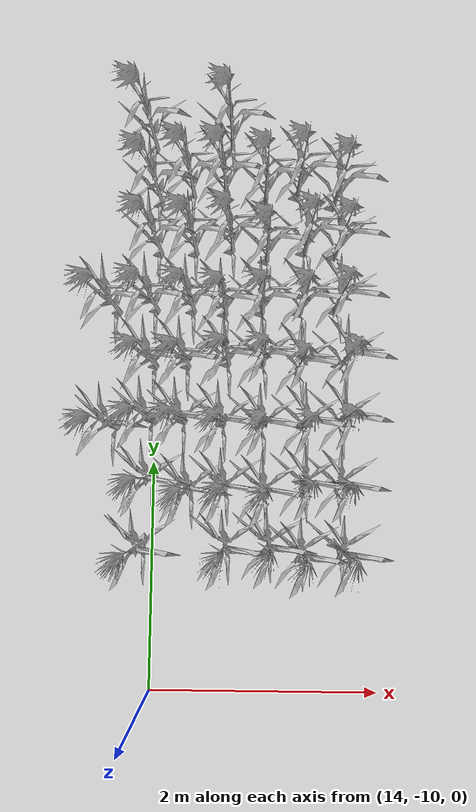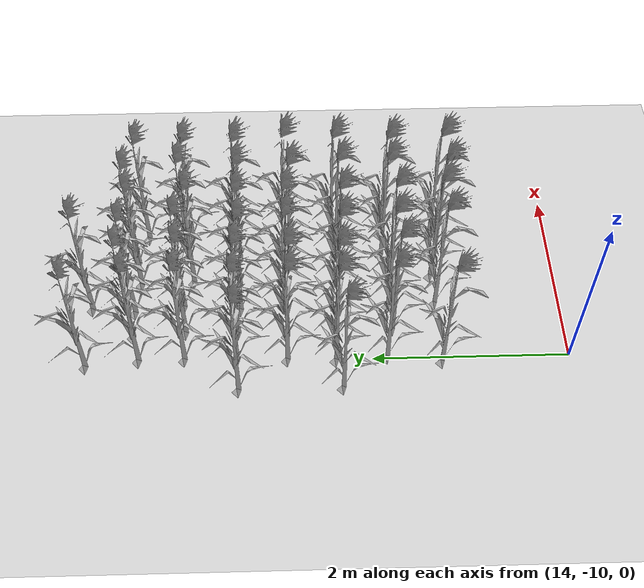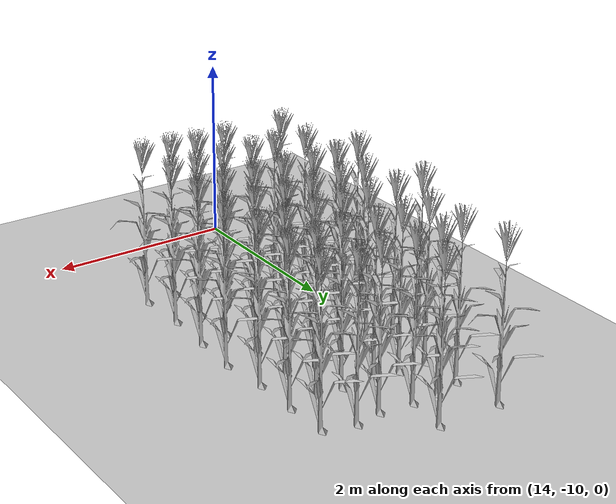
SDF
<sdf version="1.7">
 <world name="farmland_world">
  <model name="ground_plane">
   <static>1</static>
   <link name="link">
    <collision name="collision">
     <geometry><plane><normal>0 0 1</normal><size>40.0 40.0</size></plane></geometry>
     <surface><friction><ode><mu>100</mu><mu2>50</mu2></ode></friction></surface>
    </collision>
    <visual name="visual">
     <cast_shadows>0</cast_shadows>
     <geometry><plane><normal>0 0 1</normal><size>40.0 40.0</size></plane></geometry>
     <material>
      <script><uri>file://media/materials/scripts/gazebo.material</uri><name>Gazebo/Grey</name></script>
     </material>
    </visual>
   </link>
  </model>
  <model name="tree_3_1428">
   <static>1</static>
   <link name="link">
    <collision name="collision">
     <geometry><mesh><uri>model://Corn_low_poly/corn.obj</uri><scale>1 1 1</scale></mesh></geometry>
     <surface><friction><ode><mu>100</mu><mu2>50</mu2></ode></friction></surface>
    </collision>
    <visual name="visual">
     <geometry><mesh><uri>model://Corn_low_poly/corn.obj</uri><scale>1 1 1</scale></mesh></geometry>
    </visual>
   </link>
   <pose>13.676796730880094 -6.616987077211075 0 0 0 0</pose>
  </model>
  <model name="tree_3_1430">
   <static>1</static>
   <link name="link">
    <collision name="collision">
     <geometry><mesh><uri>model://Corn_low_poly/corn.obj</uri><scale>1 1 1</scale></mesh></geometry>
     <surface><friction><ode><mu>100</mu><mu2>50</mu2></ode></friction></surface>
    </collision>
    <visual name="visual">
     <geometry><mesh><uri>model://Corn_low_poly/corn.obj</uri><scale>1 1 1</scale></mesh></geometry>
    </visual>
   </link>
   <pose>13.68183654020661 -7.6623851158280045 0 0 0 0</pose>
  </model>
  <model name="tree_3_1451">
   <static>1</static>
   <link name="link">
    <collision name="collision">
     <geometry><mesh><uri>model://Corn_low_poly/corn.obj</uri><scale>1 1 1</scale></mesh></geometry>
     <surface><friction><ode><mu>100</mu><mu2>50</mu2></ode></friction></surface>
    </collision>
    <visual name="visual">
     <geometry><mesh><uri>model://Corn_low_poly/corn.obj</uri><scale>1 1 1</scale></mesh></geometry>
    </visual>
   </link>
   <pose>13.983714766761885 -5.066451543589041 0 0 0 0</pose>
  </model>
  <model name="tree_3_1452">
   <static>1</static>
   <link name="link">
    <collision name="collision">
     <geometry><mesh><uri>model://Corn_low_poly/corn.obj</uri><scale>1 1 1</scale></mesh></geometry>
     <surface><friction><ode><mu>100</mu><mu2>50</mu2></ode></friction></surface>
    </collision>
    <visual name="visual">
     <geometry><mesh><uri>model://Corn_low_poly/corn.obj</uri><scale>1 1 1</scale></mesh></geometry>
    </visual>
   </link>
   <pose>14.041252536556662 -5.600160106436009 0 0 0 0</pose>
  </model>
  <model name="tree_3_1453">
   <static>1</static>
   <link name="link">
    <collision name="collision">
     <geometry><mesh><uri>model://Corn_low_poly/corn.obj</uri><scale>1 1 1</scale></mesh></geometry>
     <surface><friction><ode><mu>100</mu><mu2>50</mu2></ode></friction></surface>
    </collision>
    <visual name="visual">
     <geometry><mesh><uri>model://Corn_low_poly/corn.obj</uri><scale>1 1 1</scale></mesh></geometry>
    </visual>
   </link>
   <pose>14.043924714610451 -6.065669924956676 0 0 0 0</pose>
  </model>
  <model name="tree_3_1454">
   <static>1</static>
   <link name="link">
    <collision name="collision">
     <geometry><mesh><uri>model://Corn_low_poly/corn.obj</uri><scale>1 1 1</scale></mesh></geometry>
     <surface><friction><ode><mu>100</mu><mu2>50</mu2></ode></friction></surface>
    </collision>
    <visual name="visual">
     <geometry><mesh><uri>model://Corn_low_poly/corn.obj</uri><scale>1 1 1</scale></mesh></geometry>
    </visual>
   </link>
   <pose>14.021790025080792 -6.596395530186644 0 0 0 0</pose>
  </model>
  <model name="tree_3_1455">
   <static>1</static>
   <link name="link">
    <collision name="collision">
     <geometry><mesh><uri>model://Corn_low_poly/corn.obj</uri><scale>1 1 1</scale></mesh></geometry>
     <surface><friction><ode><mu>100</mu><mu2>50</mu2></ode></friction></surface>
    </collision>
    <visual name="visual">
     <geometry><mesh><uri>model://Corn_low_poly/corn.obj</uri><scale>1 1 1</scale></mesh></geometry>
    </visual>
   </link>
   <pose>14.021424172310198 -7.109429439513465 0 0 0 0</pose>
  </model>
  <model name="tree_3_1456">
   <static>1</static>
   <link name="link">
    <collision name="collision">
     <geometry><mesh><uri>model://Corn_low_poly/corn.obj</uri><scale>1 1 1</scale></mesh></geometry>
     <surface><friction><ode><mu>100</mu><mu2>50</mu2></ode></friction></surface>
    </collision>
    <visual name="visual">
     <geometry><mesh><uri>model://Corn_low_poly/corn.obj</uri><scale>1 1 1</scale></mesh></geometry>
    </visual>
   </link>
   <pose>14.00314585655028 -7.601303689612518 0 0 0 0</pose>
  </model>
  <model name="tree_3_1457">
   <static>1</static>
   <link name="link">
    <collision name="collision">
     <geometry><mesh><uri>model://Corn_low_poly/corn.obj</uri><scale>1 1 1</scale></mesh></geometry>
     <surface><friction><ode><mu>100</mu><mu2>50</mu2></ode></friction></surface>
    </collision>
    <visual name="visual">
     <geometry><mesh><uri>model://Corn_low_poly/corn.obj</uri><scale>1 1 1</scale></mesh></geometry>
    </visual>
   </link>
   <pose>14.031186266190737 -8.12065834037153 0 0 0 0</pose>
  </model>
  <model name="tree_3_1458">
   <static>1</static>
   <link name="link">
    <collision name="collision">
     <geometry><mesh><uri>model://Corn_low_poly/corn.obj</uri><scale>1 1 1</scale></mesh></geometry>
     <surface><friction><ode><mu>100</mu><mu2>50</mu2></ode></friction></surface>
    </collision>
    <visual name="visual">
     <geometry><mesh><uri>model://Corn_low_poly/corn.obj</uri><scale>1 1 1</scale></mesh></geometry>
    </visual>
   </link>
   <pose>13.963249650646222 -8.672504139493602 0 0 0 0</pose>
  </model>
  <model name="tree_3_1478">
   <static>1</static>
   <link name="link">
    <collision name="collision">
     <geometry><mesh><uri>model://Corn_low_poly/corn.obj</uri><scale>1 1 1</scale></mesh></geometry>
     <surface><friction><ode><mu>100</mu><mu2>50</mu2></ode></friction></surface>
    </collision>
    <visual name="visual">
     <geometry><mesh><uri>model://Corn_low_poly/corn.obj</uri><scale>1 1 1</scale></mesh></geometry>
    </visual>
   </link>
   <pose>14.336302962556038 -5.522656028576977 0 0 0 0</pose>
  </model>
  <model name="tree_3_1479">
   <static>1</static>
   <link name="link">
    <collision name="collision">
     <geometry><mesh><uri>model://Corn_low_poly/corn.obj</uri><scale>1 1 1</scale></mesh></geometry>
     <surface><friction><ode><mu>100</mu><mu2>50</mu2></ode></friction></surface>
    </collision>
    <visual name="visual">
     <geometry><mesh><uri>model://Corn_low_poly/corn.obj</uri><scale>1 1 1</scale></mesh></geometry>
    </visual>
   </link>
   <pose>14.368115969166864 -6.062982621829716 0 0 0 0</pose>
  </model>
  <model name="tree_3_1480">
   <static>1</static>
   <link name="link">
    <collision name="collision">
     <geometry><mesh><uri>model://Corn_low_poly/corn.obj</uri><scale>1 1 1</scale></mesh></geometry>
     <surface><friction><ode><mu>100</mu><mu2>50</mu2></ode></friction></surface>
    </collision>
    <visual name="visual">
     <geometry><mesh><uri>model://Corn_low_poly/corn.obj</uri><scale>1 1 1</scale></mesh></geometry>
    </visual>
   </link>
   <pose>14.355249342616975 -6.604827270149326 0 0 0 0</pose>
  </model>
  <model name="tree_3_1481">
   <static>1</static>
   <link name="link">
    <collision name="collision">
     <geometry><mesh><uri>model://Corn_low_poly/corn.obj</uri><scale>1 1 1</scale></mesh></geometry>
     <surface><friction><ode><mu>100</mu><mu2>50</mu2></ode></friction></surface>
    </collision>
    <visual name="visual">
     <geometry><mesh><uri>model://Corn_low_poly/corn.obj</uri><scale>1 1 1</scale></mesh></geometry>
    </visual>
   </link>
   <pose>14.314392381343186 -7.110945833761643 0 0 0 0</pose>
  </model>
  <model name="tree_3_1482">
   <static>1</static>
   <link name="link">
    <collision name="collision">
     <geometry><mesh><uri>model://Corn_low_poly/corn.obj</uri><scale>1 1 1</scale></mesh></geometry>
     <surface><friction><ode><mu>100</mu><mu2>50</mu2></ode></friction></surface>
    </collision>
    <visual name="visual">
     <geometry><mesh><uri>model://Corn_low_poly/corn.obj</uri><scale>1 1 1</scale></mesh></geometry>
    </visual>
   </link>
   <pose>14.289646969490239 -7.608732509536324 0 0 0 0</pose>
  </model>
  <model name="tree_3_1483">
   <static>1</static>
   <link name="link">
    <collision name="collision">
     <geometry><mesh><uri>model://Corn_low_poly/corn.obj</uri><scale>1 1 1</scale></mesh></geometry>
     <surface><friction><ode><mu>100</mu><mu2>50</mu2></ode></friction></surface>
    </collision>
    <visual name="visual">
     <geometry><mesh><uri>model://Corn_low_poly/corn.obj</uri><scale>1 1 1</scale></mesh></geometry>
    </visual>
   </link>
   <pose>14.36653236536765 -8.196435381651511 0 0 0 0</pose>
  </model>
  <model name="tree_3_1503">
   <static>1</static>
   <link name="link">
    <collision name="collision">
     <geometry><mesh><uri>model://Corn_low_poly/corn.obj</uri><scale>1 1 1</scale></mesh></geometry>
     <surface><friction><ode><mu>100</mu><mu2>50</mu2></ode></friction></surface>
    </collision>
    <visual name="visual">
     <geometry><mesh><uri>model://Corn_low_poly/corn.obj</uri><scale>1 1 1</scale></mesh></geometry>
    </visual>
   </link>
   <pose>14.68640691118101 -5.075198958176408 0 0 0 0</pose>
  </model>
  <model name="tree_3_1504">
   <static>1</static>
   <link name="link">
    <collision name="collision">
     <geometry><mesh><uri>model://Corn_low_poly/corn.obj</uri><scale>1 1 1</scale></mesh></geometry>
     <surface><friction><ode><mu>100</mu><mu2>50</mu2></ode></friction></surface>
    </collision>
    <visual name="visual">
     <geometry><mesh><uri>model://Corn_low_poly/corn.obj</uri><scale>1 1 1</scale></mesh></geometry>
    </visual>
   </link>
   <pose>14.632975745946224 -5.523965721585381 0 0 0 0</pose>
  </model>
  <model name="tree_3_1505">
   <static>1</static>
   <link name="link">
    <collision name="collision">
     <geometry><mesh><uri>model://Corn_low_poly/corn.obj</uri><scale>1 1 1</scale></mesh></geometry>
     <surface><friction><ode><mu>100</mu><mu2>50</mu2></ode></friction></surface>
    </collision>
    <visual name="visual">
     <geometry><mesh><uri>model://Corn_low_poly/corn.obj</uri><scale>1 1 1</scale></mesh></geometry>
    </visual>
   </link>
   <pose>14.697651900814224 -6.032397212446846 0 0 0 0</pose>
  </model>
  <model name="tree_3_1506">
   <static>1</static>
   <link name="link">
    <collision name="collision">
     <geometry><mesh><uri>model://Corn_low_poly/corn.obj</uri><scale>1 1 1</scale></mesh></geometry>
     <surface><friction><ode><mu>100</mu><mu2>50</mu2></ode></friction></surface>
    </collision>
    <visual name="visual">
     <geometry><mesh><uri>model://Corn_low_poly/corn.obj</uri><scale>1 1 1</scale></mesh></geometry>
    </visual>
   </link>
   <pose>14.645584381121854 -6.626507944955268 0 0 0 0</pose>
  </model>
  <model name="tree_3_1507">
   <static>1</static>
   <link name="link">
    <collision name="collision">
     <geometry><mesh><uri>model://Corn_low_poly/corn.obj</uri><scale>1 1 1</scale></mesh></geometry>
     <surface><friction><ode><mu>100</mu><mu2>50</mu2></ode></friction></surface>
    </collision>
    <visual name="visual">
     <geometry><mesh><uri>model://Corn_low_poly/corn.obj</uri><scale>1 1 1</scale></mesh></geometry>
    </visual>
   </link>
   <pose>14.675526359209565 -7.085725342013497 0 0 0 0</pose>
  </model>
  <model name="tree_3_1508">
   <static>1</static>
   <link name="link">
    <collision name="collision">
     <geometry><mesh><uri>model://Corn_low_poly/corn.obj</uri><scale>1 1 1</scale></mesh></geometry>
     <surface><friction><ode><mu>100</mu><mu2>50</mu2></ode></friction></surface>
    </collision>
    <visual name="visual">
     <geometry><mesh><uri>model://Corn_low_poly/corn.obj</uri><scale>1 1 1</scale></mesh></geometry>
    </visual>
   </link>
   <pose>14.63925703999344 -7.63553292959259 0 0 0 0</pose>
  </model>
  <model name="tree_3_1509">
   <static>1</static>
   <link name="link">
    <collision name="collision">
     <geometry><mesh><uri>model://Corn_low_poly/corn.obj</uri><scale>1 1 1</scale></mesh></geometry>
     <surface><friction><ode><mu>100</mu><mu2>50</mu2></ode></friction></surface>
    </collision>
    <visual name="visual">
     <geometry><mesh><uri>model://Corn_low_poly/corn.obj</uri><scale>1 1 1</scale></mesh></geometry>
    </visual>
   </link>
   <pose>14.668878865899854 -8.171101247776415 0 0 0 0</pose>
  </model>
  <model name="tree_3_1510">
   <static>1</static>
   <link name="link">
    <collision name="collision">
     <geometry><mesh><uri>model://Corn_low_poly/corn.obj</uri><scale>1 1 1</scale></mesh></geometry>
     <surface><friction><ode><mu>100</mu><mu2>50</mu2></ode></friction></surface>
    </collision>
    <visual name="visual">
     <geometry><mesh><uri>model://Corn_low_poly/corn.obj</uri><scale>1 1 1</scale></mesh></geometry>
    </visual>
   </link>
   <pose>14.684622643631894 -8.66314925126853 0 0 0 0</pose>
  </model>
  <model name="tree_3_1530">
   <static>1</static>
   <link name="link">
    <collision name="collision">
     <geometry><mesh><uri>model://Corn_low_poly/corn.obj</uri><scale>1 1 1</scale></mesh></geometry>
     <surface><friction><ode><mu>100</mu><mu2>50</mu2></ode></friction></surface>
    </collision>
    <visual name="visual">
     <geometry><mesh><uri>model://Corn_low_poly/corn.obj</uri><scale>1 1 1</scale></mesh></geometry>
    </visual>
   </link>
   <pose>14.995893774522262 -5.565418896640266 0 0 0 0</pose>
  </model>
  <model name="tree_3_1531">
   <static>1</static>
   <link name="link">
    <collision name="collision">
     <geometry><mesh><uri>model://Corn_low_poly/corn.obj</uri><scale>1 1 1</scale></mesh></geometry>
     <surface><friction><ode><mu>100</mu><mu2>50</mu2></ode></friction></surface>
    </collision>
    <visual name="visual">
     <geometry><mesh><uri>model://Corn_low_poly/corn.obj</uri><scale>1 1 1</scale></mesh></geometry>
    </visual>
   </link>
   <pose>15.012321718342857 -6.123375667620915 0 0 0 0</pose>
  </model>
  <model name="tree_3_1532">
   <static>1</static>
   <link name="link">
    <collision name="collision">
     <geometry><mesh><uri>model://Corn_low_poly/corn.obj</uri><scale>1 1 1</scale></mesh></geometry>
     <surface><friction><ode><mu>100</mu><mu2>50</mu2></ode></friction></surface>
    </collision>
    <visual name="visual">
     <geometry><mesh><uri>model://Corn_low_poly/corn.obj</uri><scale>1 1 1</scale></mesh></geometry>
    </visual>
   </link>
   <pose>14.975044704642444 -6.611454559028114 0 0 0 0</pose>
  </model>
  <model name="tree_3_1533">
   <static>1</static>
   <link name="link">
    <collision name="collision">
     <geometry><mesh><uri>model://Corn_low_poly/corn.obj</uri><scale>1 1 1</scale></mesh></geometry>
     <surface><friction><ode><mu>100</mu><mu2>50</mu2></ode></friction></surface>
    </collision>
    <visual name="visual">
     <geometry><mesh><uri>model://Corn_low_poly/corn.obj</uri><scale>1 1 1</scale></mesh></geometry>
    </visual>
   </link>
   <pose>14.989016781978805 -7.086453828435899 0 0 0 0</pose>
  </model>
  <model name="tree_3_1534">
   <static>1</static>
   <link name="link">
    <collision name="collision">
     <geometry><mesh><uri>model://Corn_low_poly/corn.obj</uri><scale>1 1 1</scale></mesh></geometry>
     <surface><friction><ode><mu>100</mu><mu2>50</mu2></ode></friction></surface>
    </collision>
    <visual name="visual">
     <geometry><mesh><uri>model://Corn_low_poly/corn.obj</uri><scale>1 1 1</scale></mesh></geometry>
    </visual>
   </link>
   <pose>14.981625599079733 -7.651390713848339 0 0 0 0</pose>
  </model>
  <model name="tree_3_1535">
   <static>1</static>
   <link name="link">
    <collision name="collision">
     <geometry><mesh><uri>model://Corn_low_poly/corn.obj</uri><scale>1 1 1</scale></mesh></geometry>
     <surface><friction><ode><mu>100</mu><mu2>50</mu2></ode></friction></surface>
    </collision>
    <visual name="visual">
     <geometry><mesh><uri>model://Corn_low_poly/corn.obj</uri><scale>1 1 1</scale></mesh></geometry>
    </visual>
   </link>
   <pose>15.000839307610464 -8.200544316610198 0 0 0 0</pose>
  </model>
  <model name="tree_3_1536">
   <static>1</static>
   <link name="link">
    <collision name="collision">
     <geometry><mesh><uri>model://Corn_low_poly/corn.obj</uri><scale>1 1 1</scale></mesh></geometry>
     <surface><friction><ode><mu>100</mu><mu2>50</mu2></ode></friction></surface>
    </collision>
    <visual name="visual">
     <geometry><mesh><uri>model://Corn_low_poly/corn.obj</uri><scale>1 1 1</scale></mesh></geometry>
    </visual>
   </link>
   <pose>15.04073291218324 -8.647100755823335 0 0 0 0</pose>
  </model>
  <model name="tree_3_1556">
   <static>1</static>
   <link name="link">
    <collision name="collision">
     <geometry><mesh><uri>model://Corn_low_poly/corn.obj</uri><scale>1 1 1</scale></mesh></geometry>
     <surface><friction><ode><mu>100</mu><mu2>50</mu2></ode></friction></surface>
    </collision>
    <visual name="visual">
     <geometry><mesh><uri>model://Corn_low_poly/corn.obj</uri><scale>1 1 1</scale></mesh></geometry>
    </visual>
   </link>
   <pose>15.289631696885307 -5.512393529921119 0 0 0 0</pose>
  </model>
  <model name="tree_3_1557">
   <static>1</static>
   <link name="link">
    <collision name="collision">
     <geometry><mesh><uri>model://Corn_low_poly/corn.obj</uri><scale>1 1 1</scale></mesh></geometry>
     <surface><friction><ode><mu>100</mu><mu2>50</mu2></ode></friction></surface>
    </collision>
    <visual name="visual">
     <geometry><mesh><uri>model://Corn_low_poly/corn.obj</uri><scale>1 1 1</scale></mesh></geometry>
    </visual>
   </link>
   <pose>15.36042018481332 -6.043071979819105 0 0 0 0</pose>
  </model>
  <model name="tree_3_1558">
   <static>1</static>
   <link name="link">
    <collision name="collision">
     <geometry><mesh><uri>model://Corn_low_poly/corn.obj</uri><scale>1 1 1</scale></mesh></geometry>
     <surface><friction><ode><mu>100</mu><mu2>50</mu2></ode></friction></surface>
    </collision>
    <visual name="visual">
     <geometry><mesh><uri>model://Corn_low_poly/corn.obj</uri><scale>1 1 1</scale></mesh></geometry>
    </visual>
   </link>
   <pose>15.323401003537569 -6.607868412836492 0 0 0 0</pose>
  </model>
  <model name="tree_3_1559">
   <static>1</static>
   <link name="link">
    <collision name="collision">
     <geometry><mesh><uri>model://Corn_low_poly/corn.obj</uri><scale>1 1 1</scale></mesh></geometry>
     <surface><friction><ode><mu>100</mu><mu2>50</mu2></ode></friction></surface>
    </collision>
    <visual name="visual">
     <geometry><mesh><uri>model://Corn_low_poly/corn.obj</uri><scale>1 1 1</scale></mesh></geometry>
    </visual>
   </link>
   <pose>15.305541354348787 -7.143234812196369 0 0 0 0</pose>
  </model>
  <model name="tree_3_1560">
   <static>1</static>
   <link name="link">
    <collision name="collision">
     <geometry><mesh><uri>model://Corn_low_poly/corn.obj</uri><scale>1 1 1</scale></mesh></geometry>
     <surface><friction><ode><mu>100</mu><mu2>50</mu2></ode></friction></surface>
    </collision>
    <visual name="visual">
     <geometry><mesh><uri>model://Corn_low_poly/corn.obj</uri><scale>1 1 1</scale></mesh></geometry>
    </visual>
   </link>
   <pose>15.348129168030212 -7.641716936084444 0 0 0 0</pose>
  </model>
  <model name="tree_3_1561">
   <static>1</static>
   <link name="link">
    <collision name="collision">
     <geometry><mesh><uri>model://Corn_low_poly/corn.obj</uri><scale>1 1 1</scale></mesh></geometry>
     <surface><friction><ode><mu>100</mu><mu2>50</mu2></ode></friction></surface>
    </collision>
    <visual name="visual">
     <geometry><mesh><uri>model://Corn_low_poly/corn.obj</uri><scale>1 1 1</scale></mesh></geometry>
    </visual>
   </link>
   <pose>15.345240765180924 -8.138138889788888 0 0 0 0</pose>
  </model>
  <model name="tree_3_1562">
   <static>1</static>
   <link name="link">
    <collision name="collision">
     <geometry><mesh><uri>model://Corn_low_poly/corn.obj</uri><scale>1 1 1</scale></mesh></geometry>
     <surface><friction><ode><mu>100</mu><mu2>50</mu2></ode></friction></surface>
    </collision>
    <visual name="visual">
     <geometry><mesh><uri>model://Corn_low_poly/corn.obj</uri><scale>1 1 1</scale></mesh></geometry>
    </visual>
   </link>
   <pose>15.312633280278526 -8.716899520071422 0 0 0 0</pose>
  </model>
  <model name="tree_3_1582">
   <static>1</static>
   <link name="link">
    <collision name="collision">
     <geometry><mesh><uri>model://Corn_low_poly/corn.obj</uri><scale>1 1 1</scale></mesh></geometry>
     <surface><friction><ode><mu>100</mu><mu2>50</mu2></ode></friction></surface>
    </collision>
    <visual name="visual">
     <geometry><mesh><uri>model://Corn_low_poly/corn.obj</uri><scale>1 1 1</scale></mesh></geometry>
    </visual>
   </link>
   <pose>15.625111646579292 -5.606145133706021 0 0 0 0</pose>
  </model>
  <model name="tree_3_1583">
   <static>1</static>
   <link name="link">
    <collision name="collision">
     <geometry><mesh><uri>model://Corn_low_poly/corn.obj</uri><scale>1 1 1</scale></mesh></geometry>
     <surface><friction><ode><mu>100</mu><mu2>50</mu2></ode></friction></surface>
    </collision>
    <visual name="visual">
     <geometry><mesh><uri>model://Corn_low_poly/corn.obj</uri><scale>1 1 1</scale></mesh></geometry>
    </visual>
   </link>
   <pose>15.637394803691274 -6.0763049608193525 0 0 0 0</pose>
  </model>
  <model name="tree_3_1584">
   <static>1</static>
   <link name="link">
    <collision name="collision">
     <geometry><mesh><uri>model://Corn_low_poly/corn.obj</uri><scale>1 1 1</scale></mesh></geometry>
     <surface><friction><ode><mu>100</mu><mu2>50</mu2></ode></friction></surface>
    </collision>
    <visual name="visual">
     <geometry><mesh><uri>model://Corn_low_poly/corn.obj</uri><scale>1 1 1</scale></mesh></geometry>
    </visual>
   </link>
   <pose>15.63336035888186 -6.58245333893342 0 0 0 0</pose>
  </model>
  <model name="tree_3_1585">
   <static>1</static>
   <link name="link">
    <collision name="collision">
     <geometry><mesh><uri>model://Corn_low_poly/corn.obj</uri><scale>1 1 1</scale></mesh></geometry>
     <surface><friction><ode><mu>100</mu><mu2>50</mu2></ode></friction></surface>
    </collision>
    <visual name="visual">
     <geometry><mesh><uri>model://Corn_low_poly/corn.obj</uri><scale>1 1 1</scale></mesh></geometry>
    </visual>
   </link>
   <pose>15.69094809650662 -7.087864645459333 0 0 0 0</pose>
  </model>
  <model name="tree_3_1586">
   <static>1</static>
   <link name="link">
    <collision name="collision">
     <geometry><mesh><uri>model://Corn_low_poly/corn.obj</uri><scale>1 1 1</scale></mesh></geometry>
     <surface><friction><ode><mu>100</mu><mu2>50</mu2></ode></friction></surface>
    </collision>
    <visual name="visual">
     <geometry><mesh><uri>model://Corn_low_poly/corn.obj</uri><scale>1 1 1</scale></mesh></geometry>
    </visual>
   </link>
   <pose>15.662617478872695 -7.599737391531323 0 0 0 0</pose>
  </model>
  <model name="tree_3_1587">
   <static>1</static>
   <link name="link">
    <collision name="collision">
     <geometry><mesh><uri>model://Corn_low_poly/corn.obj</uri><scale>1 1 1</scale></mesh></geometry>
     <surface><friction><ode><mu>100</mu><mu2>50</mu2></ode></friction></surface>
    </collision>
    <visual name="visual">
     <geometry><mesh><uri>model://Corn_low_poly/corn.obj</uri><scale>1 1 1</scale></mesh></geometry>
    </visual>
   </link>
   <pose>15.633693540237175 -8.14819239490815 0 0 0 0</pose>
  </model>
  <model name="tree_3_1588">
   <static>1</static>
   <link name="link">
    <collision name="collision">
     <geometry><mesh><uri>model://Corn_low_poly/corn.obj</uri><scale>1 1 1</scale></mesh></geometry>
     <surface><friction><ode><mu>100</mu><mu2>50</mu2></ode></friction></surface>
    </collision>
    <visual name="visual">
     <geometry><mesh><uri>model://Corn_low_poly/corn.obj</uri><scale>1 1 1</scale></mesh></geometry>
    </visual>
   </link>
   <pose>15.655809722657986 -8.698431057898684 0 0 0 0</pose>
  </model>
 </world>
</sdf>
